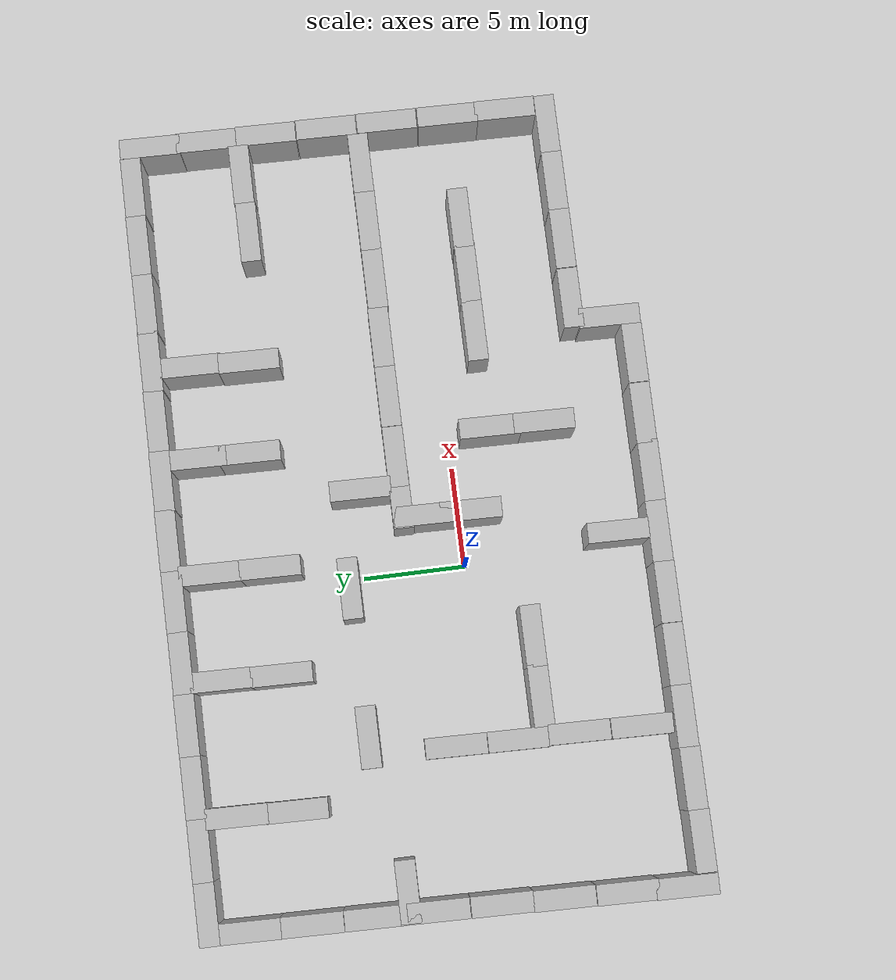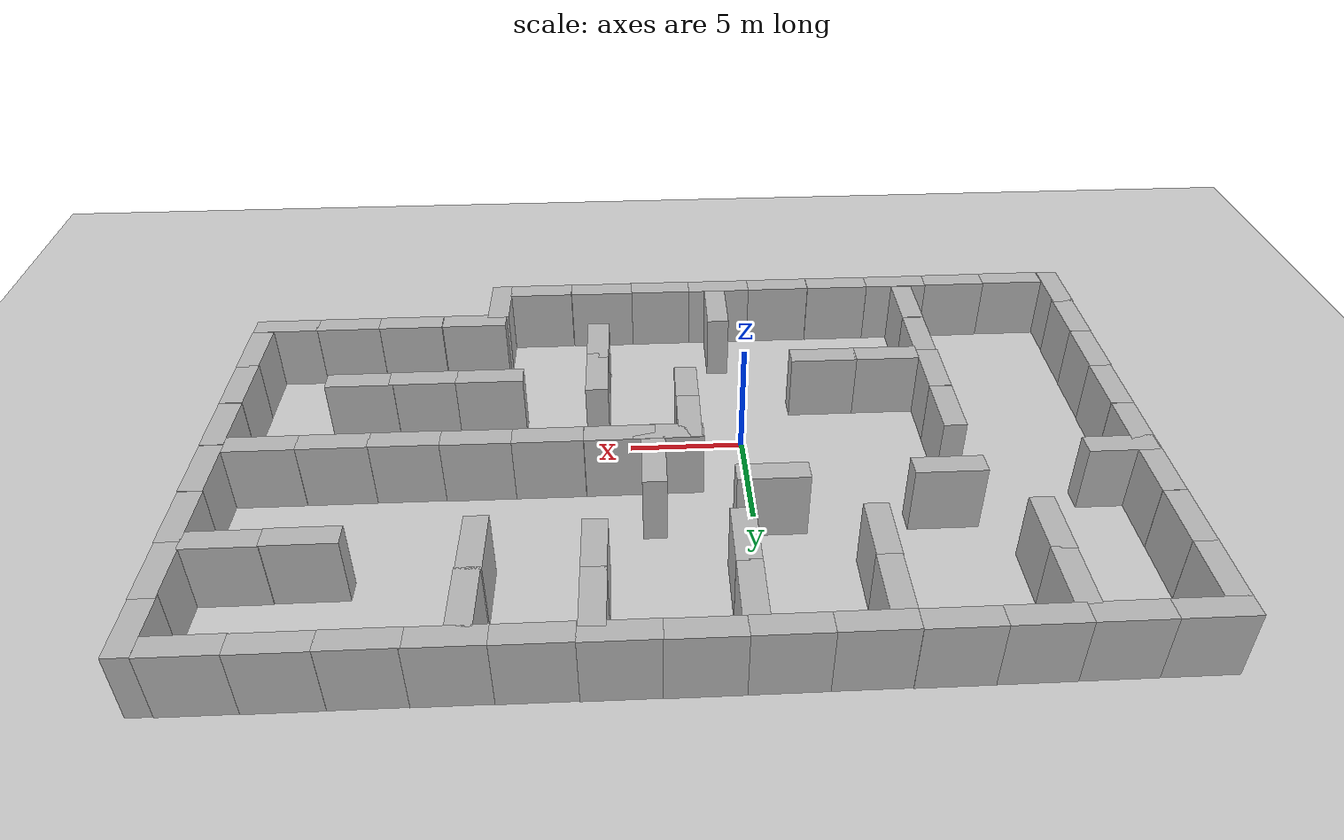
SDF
<sdf version="1.7">
 <world name="default">
  <light name="sun" type="directional">
   <pose>0 0 10 0 -0 0</pose>
   <diffuse>0.8 0.8 0.8 1</diffuse>
   <specular>0.2 0.2 0.2 1</specular>
   <attenuation>
    <range>1000</range>
    <constant>0.9</constant>
    <linear>0.01</linear>
    <quadratic>0.001</quadratic>
   </attenuation>
   <direction>-0.5 0.1 -0.9</direction>
   <spot><inner_angle>0</inner_angle><outer_angle>0</outer_angle><falloff>0</falloff></spot>
  </light>
  <model name="ground_plane">
   <static>1</static>
   <link name="link">
    <collision name="collision">
     <geometry><plane><normal>0 0 1</normal><size>100 100</size></plane></geometry>
     <surface>
      <contact><collide_bitmask>65535</collide_bitmask></contact>
      <friction><ode><mu>100</mu><mu2>50</mu2></ode></friction>
     </surface>
    </collision>
    <visual name="visual">
     <cast_shadows>0</cast_shadows>
     <geometry><plane><normal>0 0 1</normal><size>100 100</size></plane></geometry>
     <material>
      <script><uri>file://media/materials/scripts/gazebo.material</uri><name>Gazebo/Grey</name></script>
     </material>
    </visual>
   </link>
  </model>
  <gravity>0 0 -9.8</gravity>
  <magnetic_field>6e-06 2.3e-05 -4.2e-05</magnetic_field>
  <atmosphere type="adiabatic"/>
  <physics type="ode">
   <max_step_size>0.001</max_step_size>
   <real_time_factor>1</real_time_factor>
   <real_time_update_rate>1000</real_time_update_rate>
  </physics>
  <scene><ambient>0.4 0.4 0.4 1</ambient><background>0.7 0.7 0.7 1</background><shadows>1</shadows></scene>
  <spherical_coordinates>
   <surface_model>EARTH_WGS84</surface_model>
   <latitude_deg>0</latitude_deg>
   <longitude_deg>0</longitude_deg>
   <elevation>0</elevation>
   <heading_deg>0</heading_deg>
  </spherical_coordinates>
  <model name="brick_box_3x1x3">
   <static>1</static>
   <link name="chassis">
    <pose>0 0 1.5 0 -0 0</pose>
    <collision name="collision"><geometry><box><size>3 1 3</size></box></geometry></collision>
    <visual name="visual">
     <geometry><mesh><uri>model://brick_box_3x1x3/meshes/simple_box.dae</uri><scale>3 1 3</scale></mesh></geometry>
     <material>
      <script>
       <uri>model://brick_box_3x1x3/materials/scripts</uri>
       <uri>model://brick_box_3x1x3/materials/textures</uri>
       <name>BrickBox/Diffuse</name>
      </script>
     </material>
    </visual>
   </link>
   <pose>6.24661 -9.49277 0 0 -0 0</pose>
  </model>
  <model name="brick_box_3x1x3_0">
   <static>1</static>
   <link name="chassis">
    <pose>0 0 1.5 0 -0 0</pose>
    <collision name="collision"><geometry><box><size>3 1 3</size></box></geometry></collision>
    <visual name="visual">
     <geometry><mesh><uri>model://brick_box_3x1x3/meshes/simple_box.dae</uri><scale>3 1 3</scale></mesh></geometry>
     <material>
      <script>
       <uri>model://brick_box_3x1x3/materials/scripts</uri>
       <uri>model://brick_box_3x1x3/materials/textures</uri>
       <name>BrickBox/Diffuse</name>
      </script>
     </material>
    </visual>
   </link>
   <pose>9.26993 -9.50546 0 0 -0 0</pose>
  </model>
  <model name="brick_box_3x1x3_1">
   <static>1</static>
   <link name="chassis">
    <pose>0 0 1.5 0 -0 0</pose>
    <collision name="collision"><geometry><box><size>3 1 3</size></box></geometry></collision>
    <visual name="visual">
     <geometry><mesh><uri>model://brick_box_3x1x3/meshes/simple_box.dae</uri><scale>3 1 3</scale></mesh></geometry>
     <material>
      <script>
       <uri>model://brick_box_3x1x3/materials/scripts</uri>
       <uri>model://brick_box_3x1x3/materials/textures</uri>
       <name>BrickBox/Diffuse</name>
      </script>
     </material>
    </visual>
   </link>
   <pose>11.2396 -8.49514 0 0 0 -1.58618</pose>
  </model>
  <model name="brick_box_3x1x3_clone">
   <static>1</static>
   <link name="chassis">
    <pose>0 0 1.5 0 -0 0</pose>
    <collision name="collision"><geometry><box><size>3 1 3</size></box></geometry></collision>
    <visual name="visual">
     <geometry><mesh><uri>model://brick_box_3x1x3/meshes/simple_box.dae</uri><scale>3 1 3</scale></mesh></geometry>
     <material>
      <script>
       <uri>model://brick_box_3x1x3/materials/scripts</uri>
       <uri>model://brick_box_3x1x3/materials/textures</uri>
       <name>BrickBox/Diffuse</name>
      </script>
     </material>
    </visual>
   </link>
   <pose>3.37674 -9.50836 0 0 -0 0</pose>
  </model>
  <model name="brick_box_3x1x3_clone_0">
   <static>1</static>
   <link name="chassis">
    <pose>0 0 1.5 0 -0 0</pose>
    <collision name="collision"><geometry><box><size>3 1 3</size></box></geometry></collision>
    <visual name="visual">
     <geometry><mesh><uri>model://brick_box_3x1x3/meshes/simple_box.dae</uri><scale>3 1 3</scale></mesh></geometry>
     <material>
      <script>
       <uri>model://brick_box_3x1x3/materials/scripts</uri>
       <uri>model://brick_box_3x1x3/materials/textures</uri>
       <name>BrickBox/Diffuse</name>
      </script>
     </material>
    </visual>
   </link>
   <pose>0.376266 -9.49161 0 0 -0 0</pose>
  </model>
  <model name="brick_box_3x1x3_clone_1">
   <static>1</static>
   <link name="chassis">
    <pose>0 0 1.5 0 -0 0</pose>
    <collision name="collision"><geometry><box><size>3 1 3</size></box></geometry></collision>
    <visual name="visual">
     <geometry><mesh><uri>model://brick_box_3x1x3/meshes/simple_box.dae</uri><scale>3 1 3</scale></mesh></geometry>
     <material>
      <script>
       <uri>model://brick_box_3x1x3/materials/scripts</uri>
       <uri>model://brick_box_3x1x3/materials/textures</uri>
       <name>BrickBox/Diffuse</name>
      </script>
     </material>
    </visual>
   </link>
   <pose>-2.61675 -9.50637 0 0 -0 0</pose>
  </model>
  <model name="brick_box_3x1x3_clone_2">
   <static>1</static>
   <link name="chassis">
    <pose>0 0 1.5 0 -0 0</pose>
    <collision name="collision"><geometry><box><size>3 1 3</size></box></geometry></collision>
    <visual name="visual">
     <geometry><mesh><uri>model://brick_box_3x1x3/meshes/simple_box.dae</uri><scale>3 1 3</scale></mesh></geometry>
     <material>
      <script>
       <uri>model://brick_box_3x1x3/materials/scripts</uri>
       <uri>model://brick_box_3x1x3/materials/textures</uri>
       <name>BrickBox/Diffuse</name>
      </script>
     </material>
    </visual>
   </link>
   <pose>-5.63014 -9.50078 0 0 -0 0</pose>
  </model>
  <model name="brick_box_3x1x3_clone_3">
   <static>1</static>
   <link name="chassis">
    <pose>0 0 1.5 0 -0 0</pose>
    <collision name="collision"><geometry><box><size>3 1 3</size></box></geometry></collision>
    <visual name="visual">
     <geometry><mesh><uri>model://brick_box_3x1x3/meshes/simple_box.dae</uri><scale>3 1 3</scale></mesh></geometry>
     <material>
      <script>
       <uri>model://brick_box_3x1x3/materials/scripts</uri>
       <uri>model://brick_box_3x1x3/materials/textures</uri>
       <name>BrickBox/Diffuse</name>
      </script>
     </material>
    </visual>
   </link>
   <pose>-8.63084 -9.49857 0 0 -0 0</pose>
  </model>
  <model name="brick_box_3x1x3_clone_4">
   <static>1</static>
   <link name="chassis">
    <pose>0 0 1.5 0 -0 0</pose>
    <collision name="collision"><geometry><box><size>3 1 3</size></box></geometry></collision>
    <visual name="visual">
     <geometry><mesh><uri>model://brick_box_3x1x3/meshes/simple_box.dae</uri><scale>3 1 3</scale></mesh></geometry>
     <material>
      <script>
       <uri>model://brick_box_3x1x3/materials/scripts</uri>
       <uri>model://brick_box_3x1x3/materials/textures</uri>
       <name>BrickBox/Diffuse</name>
      </script>
     </material>
    </visual>
   </link>
   <pose>-11.6146 -9.52408 0 0 -0 0</pose>
  </model>
  <model name="brick_box_3x1x3_clone_5">
   <static>1</static>
   <link name="chassis">
    <pose>0 0 1.5 0 -0 0</pose>
    <collision name="collision"><geometry><box><size>3 1 3</size></box></geometry></collision>
    <visual name="visual">
     <geometry><mesh><uri>model://brick_box_3x1x3/meshes/simple_box.dae</uri><scale>3 1 3</scale></mesh></geometry>
     <material>
      <script>
       <uri>model://brick_box_3x1x3/materials/scripts</uri>
       <uri>model://brick_box_3x1x3/materials/textures</uri>
       <name>BrickBox/Diffuse</name>
      </script>
     </material>
    </visual>
   </link>
   <pose>-14.6063 -9.54962 0 0 -0 0</pose>
  </model>
  <model name="brick_box_3x1x3_1_clone">
   <static>1</static>
   <link name="chassis">
    <pose>0 0 1.5 0 -0 0</pose>
    <collision name="collision"><geometry><box><size>3 1 3</size></box></geometry></collision>
    <visual name="visual">
     <geometry><mesh><uri>model://brick_box_3x1x3/meshes/simple_box.dae</uri><scale>3 1 3</scale></mesh></geometry>
     <material>
      <script>
       <uri>model://brick_box_3x1x3/materials/scripts</uri>
       <uri>model://brick_box_3x1x3/materials/textures</uri>
       <name>BrickBox/Diffuse</name>
      </script>
     </material>
    </visual>
   </link>
   <pose>-16.6279 -8.53924 0 0 0 -1.58618</pose>
  </model>
  <model name="brick_box_3x1x3_1_clone_0">
   <static>1</static>
   <link name="chassis">
    <pose>0 0 1.5 0 -0 0</pose>
    <collision name="collision"><geometry><box><size>3 1 3</size></box></geometry></collision>
    <visual name="visual">
     <geometry><mesh><uri>model://brick_box_3x1x3/meshes/simple_box.dae</uri><scale>3 1 3</scale></mesh></geometry>
     <material>
      <script>
       <uri>model://brick_box_3x1x3/materials/scripts</uri>
       <uri>model://brick_box_3x1x3/materials/textures</uri>
       <name>BrickBox/Diffuse</name>
      </script>
     </material>
    </visual>
   </link>
   <pose>-16.558 -5.70853 0 0 0 -1.58618</pose>
  </model>
  <model name="brick_box_3x1x3_1_clone_1">
   <static>1</static>
   <link name="chassis">
    <pose>0 0 1.5 0 -0 0</pose>
    <collision name="collision"><geometry><box><size>3 1 3</size></box></geometry></collision>
    <visual name="visual">
     <geometry><mesh><uri>model://brick_box_3x1x3/meshes/simple_box.dae</uri><scale>3 1 3</scale></mesh></geometry>
     <material>
      <script>
       <uri>model://brick_box_3x1x3/materials/scripts</uri>
       <uri>model://brick_box_3x1x3/materials/textures</uri>
       <name>BrickBox/Diffuse</name>
      </script>
     </material>
    </visual>
   </link>
   <pose>-16.4879 -2.68912 0 0 0 -1.58618</pose>
  </model>
  <model name="brick_box_3x1x3_1_clone_2">
   <static>1</static>
   <link name="chassis">
    <pose>0 0 1.5 0 -0 0</pose>
    <collision name="collision"><geometry><box><size>3 1 3</size></box></geometry></collision>
    <visual name="visual">
     <geometry><mesh><uri>model://brick_box_3x1x3/meshes/simple_box.dae</uri><scale>3 1 3</scale></mesh></geometry>
     <material>
      <script>
       <uri>model://brick_box_3x1x3/materials/scripts</uri>
       <uri>model://brick_box_3x1x3/materials/textures</uri>
       <name>BrickBox/Diffuse</name>
      </script>
     </material>
    </visual>
   </link>
   <pose>-16.4112 0.286602 0 0 0 -1.58618</pose>
  </model>
  <model name="brick_box_3x1x3_1_clone_3">
   <static>1</static>
   <link name="chassis">
    <pose>0 0 1.5 0 -0 0</pose>
    <collision name="collision"><geometry><box><size>3 1 3</size></box></geometry></collision>
    <visual name="visual">
     <geometry><mesh><uri>model://brick_box_3x1x3/meshes/simple_box.dae</uri><scale>3 1 3</scale></mesh></geometry>
     <material>
      <script>
       <uri>model://brick_box_3x1x3/materials/scripts</uri>
       <uri>model://brick_box_3x1x3/materials/textures</uri>
       <name>BrickBox/Diffuse</name>
      </script>
     </material>
    </visual>
   </link>
   <pose>-16.3624 3.31324 0 0 0 -1.58618</pose>
  </model>
  <model name="brick_box_3x1x3_1_clone_4">
   <static>1</static>
   <link name="chassis">
    <pose>0 0 1.5 0 -0 0</pose>
    <collision name="collision"><geometry><box><size>3 1 3</size></box></geometry></collision>
    <visual name="visual">
     <geometry><mesh><uri>model://brick_box_3x1x3/meshes/simple_box.dae</uri><scale>3 1 3</scale></mesh></geometry>
     <material>
      <script>
       <uri>model://brick_box_3x1x3/materials/scripts</uri>
       <uri>model://brick_box_3x1x3/materials/textures</uri>
       <name>BrickBox/Diffuse</name>
      </script>
     </material>
    </visual>
   </link>
   <pose>-16.3253 6.32221 0 0 0 -1.58618</pose>
  </model>
  <model name="brick_box_3x1x3_1_clone_5">
   <static>1</static>
   <link name="chassis">
    <pose>0 0 1.5 0 -0 0</pose>
    <collision name="collision"><geometry><box><size>3 1 3</size></box></geometry></collision>
    <visual name="visual">
     <geometry><mesh><uri>model://brick_box_3x1x3/meshes/simple_box.dae</uri><scale>3 1 3</scale></mesh></geometry>
     <material>
      <script>
       <uri>model://brick_box_3x1x3/materials/scripts</uri>
       <uri>model://brick_box_3x1x3/materials/textures</uri>
       <name>BrickBox/Diffuse</name>
      </script>
     </material>
    </visual>
   </link>
   <pose>-16.2875 9.33152 0 0 0 -1.58618</pose>
  </model>
  <model name="brick_box_3x1x3_1_clone_6">
   <static>1</static>
   <link name="chassis">
    <pose>0 0 1.5 0 -0 0</pose>
    <collision name="collision"><geometry><box><size>3 1 3</size></box></geometry></collision>
    <visual name="visual">
     <geometry><mesh><uri>model://brick_box_3x1x3/meshes/simple_box.dae</uri><scale>3 1 3</scale></mesh></geometry>
     <material>
      <script>
       <uri>model://brick_box_3x1x3/materials/scripts</uri>
       <uri>model://brick_box_3x1x3/materials/textures</uri>
       <name>BrickBox/Diffuse</name>
      </script>
     </material>
    </visual>
   </link>
   <pose>-16.2509 12.2651 0 0 0 -1.58618</pose>
  </model>
  <model name="brick_box_3x1x3_0_clone">
   <static>1</static>
   <link name="chassis">
    <pose>0 0 1.5 0 -0 0</pose>
    <collision name="collision"><geometry><box><size>3 1 3</size></box></geometry></collision>
    <visual name="visual">
     <geometry><mesh><uri>model://brick_box_3x1x3/meshes/simple_box.dae</uri><scale>3 1 3</scale></mesh></geometry>
     <material>
      <script>
       <uri>model://brick_box_3x1x3/materials/scripts</uri>
       <uri>model://brick_box_3x1x3/materials/textures</uri>
       <name>BrickBox/Diffuse</name>
      </script>
     </material>
    </visual>
   </link>
   <pose>-15.233 14.2582 0 0 -0 0</pose>
  </model>
  <model name="brick_box_3x1x3_0_clone_0">
   <static>1</static>
   <link name="chassis">
    <pose>0 0 1.5 0 -0 0</pose>
    <collision name="collision"><geometry><box><size>3 1 3</size></box></geometry></collision>
    <visual name="visual">
     <geometry><mesh><uri>model://brick_box_3x1x3/meshes/simple_box.dae</uri><scale>3 1 3</scale></mesh></geometry>
     <material>
      <script>
       <uri>model://brick_box_3x1x3/materials/scripts</uri>
       <uri>model://brick_box_3x1x3/materials/textures</uri>
       <name>BrickBox/Diffuse</name>
      </script>
     </material>
    </visual>
   </link>
   <pose>-12.2407 14.2623 0 0 -0 0</pose>
  </model>
  <model name="brick_box_3x1x3_0_clone_1">
   <static>1</static>
   <link name="chassis">
    <pose>0 0 1.5 0 -0 0</pose>
    <collision name="collision"><geometry><box><size>3 1 3</size></box></geometry></collision>
    <visual name="visual">
     <geometry><mesh><uri>model://brick_box_3x1x3/meshes/simple_box.dae</uri><scale>3 1 3</scale></mesh></geometry>
     <material>
      <script>
       <uri>model://brick_box_3x1x3/materials/scripts</uri>
       <uri>model://brick_box_3x1x3/materials/textures</uri>
       <name>BrickBox/Diffuse</name>
      </script>
     </material>
    </visual>
   </link>
   <pose>-9.24612 14.2697 0 0 -0 0</pose>
  </model>
  <model name="brick_box_3x1x3_0_clone_2">
   <static>1</static>
   <link name="chassis">
    <pose>0 0 1.5 0 -0 0</pose>
    <collision name="collision"><geometry><box><size>3 1 3</size></box></geometry></collision>
    <visual name="visual">
     <geometry><mesh><uri>model://brick_box_3x1x3/meshes/simple_box.dae</uri><scale>3 1 3</scale></mesh></geometry>
     <material>
      <script>
       <uri>model://brick_box_3x1x3/materials/scripts</uri>
       <uri>model://brick_box_3x1x3/materials/textures</uri>
       <name>BrickBox/Diffuse</name>
      </script>
     </material>
    </visual>
   </link>
   <pose>-6.25408 14.2755 0 0 -0 0</pose>
  </model>
  <model name="brick_box_3x1x3_0_clone_3">
   <static>1</static>
   <link name="chassis">
    <pose>0 0 1.5 0 -0 0</pose>
    <collision name="collision"><geometry><box><size>3 1 3</size></box></geometry></collision>
    <visual name="visual">
     <geometry><mesh><uri>model://brick_box_3x1x3/meshes/simple_box.dae</uri><scale>3 1 3</scale></mesh></geometry>
     <material>
      <script>
       <uri>model://brick_box_3x1x3/materials/scripts</uri>
       <uri>model://brick_box_3x1x3/materials/textures</uri>
       <name>BrickBox/Diffuse</name>
      </script>
     </material>
    </visual>
   </link>
   <pose>-3.26532 14.2528 0 0 -0 0</pose>
  </model>
  <model name="brick_box_3x1x3_0_clone_4">
   <static>1</static>
   <link name="chassis">
    <pose>0 0 1.5 0 -0 0</pose>
    <collision name="collision"><geometry><box><size>3 1 3</size></box></geometry></collision>
    <visual name="visual">
     <geometry><mesh><uri>model://brick_box_3x1x3/meshes/simple_box.dae</uri><scale>3 1 3</scale></mesh></geometry>
     <material>
      <script>
       <uri>model://brick_box_3x1x3/materials/scripts</uri>
       <uri>model://brick_box_3x1x3/materials/textures</uri>
       <name>BrickBox/Diffuse</name>
      </script>
     </material>
    </visual>
   </link>
   <pose>-0.277923 14.2594 0 0 -0 0</pose>
  </model>
  <model name="brick_box_3x1x3_0_clone_5">
   <static>1</static>
   <link name="chassis">
    <pose>0 0 1.5 0 -0 0</pose>
    <collision name="collision"><geometry><box><size>3 1 3</size></box></geometry></collision>
    <visual name="visual">
     <geometry><mesh><uri>model://brick_box_3x1x3/meshes/simple_box.dae</uri><scale>3 1 3</scale></mesh></geometry>
     <material>
      <script>
       <uri>model://brick_box_3x1x3/materials/scripts</uri>
       <uri>model://brick_box_3x1x3/materials/textures</uri>
       <name>BrickBox/Diffuse</name>
      </script>
     </material>
    </visual>
   </link>
   <pose>2.70645 14.267 0 0 -0 0</pose>
  </model>
  <model name="brick_box_3x1x3_0_clone_6">
   <static>1</static>
   <link name="chassis">
    <pose>0 0 1.5 0 -0 0</pose>
    <collision name="collision"><geometry><box><size>3 1 3</size></box></geometry></collision>
    <visual name="visual">
     <geometry><mesh><uri>model://brick_box_3x1x3/meshes/simple_box.dae</uri><scale>3 1 3</scale></mesh></geometry>
     <material>
      <script>
       <uri>model://brick_box_3x1x3/materials/scripts</uri>
       <uri>model://brick_box_3x1x3/materials/textures</uri>
       <name>BrickBox/Diffuse</name>
      </script>
     </material>
    </visual>
   </link>
   <pose>5.65832 14.2434 0 0 -0 0</pose>
  </model>
  <model name="brick_box_3x1x3_0_clone_7">
   <static>1</static>
   <link name="chassis">
    <pose>0 0 1.5 0 -0 0</pose>
    <collision name="collision"><geometry><box><size>3 1 3</size></box></geometry></collision>
    <visual name="visual">
     <geometry><mesh><uri>model://brick_box_3x1x3/meshes/simple_box.dae</uri><scale>3 1 3</scale></mesh></geometry>
     <material>
      <script>
       <uri>model://brick_box_3x1x3/materials/scripts</uri>
       <uri>model://brick_box_3x1x3/materials/textures</uri>
       <name>BrickBox/Diffuse</name>
      </script>
     </material>
    </visual>
   </link>
   <pose>8.63917 14.2183 0 0 -0 0</pose>
  </model>
  <model name="brick_box_3x1x3_0_clone_8">
   <static>1</static>
   <link name="chassis">
    <pose>0 0 1.5 0 -0 0</pose>
    <collision name="collision"><geometry><box><size>3 1 3</size></box></geometry></collision>
    <visual name="visual">
     <geometry><mesh><uri>model://brick_box_3x1x3/meshes/simple_box.dae</uri><scale>3 1 3</scale></mesh></geometry>
     <material>
      <script>
       <uri>model://brick_box_3x1x3/materials/scripts</uri>
       <uri>model://brick_box_3x1x3/materials/textures</uri>
       <name>BrickBox/Diffuse</name>
      </script>
     </material>
    </visual>
   </link>
   <pose>11.6184 14.1949 0 0 -0 0</pose>
  </model>
  <model name="brick_box_3x1x3_0_clone_9">
   <static>1</static>
   <link name="chassis">
    <pose>0 0 1.5 0 -0 0</pose>
    <collision name="collision"><geometry><box><size>3 1 3</size></box></geometry></collision>
    <visual name="visual">
     <geometry><mesh><uri>model://brick_box_3x1x3/meshes/simple_box.dae</uri><scale>3 1 3</scale></mesh></geometry>
     <material>
      <script>
       <uri>model://brick_box_3x1x3/materials/scripts</uri>
       <uri>model://brick_box_3x1x3/materials/textures</uri>
       <name>BrickBox/Diffuse</name>
      </script>
     </material>
    </visual>
   </link>
   <pose>14.5423 14.1735 0 0 -0 0</pose>
  </model>
  <model name="brick_box_3x1x3_0_clone_10">
   <static>1</static>
   <link name="chassis">
    <pose>0 0 1.5 0 -0 0</pose>
    <collision name="collision"><geometry><box><size>3 1 3</size></box></geometry></collision>
    <visual name="visual">
     <geometry><mesh><uri>model://brick_box_3x1x3/meshes/simple_box.dae</uri><scale>3 1 3</scale></mesh></geometry>
     <material>
      <script>
       <uri>model://brick_box_3x1x3/materials/scripts</uri>
       <uri>model://brick_box_3x1x3/materials/textures</uri>
       <name>BrickBox/Diffuse</name>
      </script>
     </material>
    </visual>
   </link>
   <pose>17.5184 14.1811 0 0 -0 0</pose>
  </model>
  <model name="brick_box_3x1x3_0_clone_11">
   <static>1</static>
   <link name="chassis">
    <pose>0 0 1.5 0 -0 0</pose>
    <collision name="collision"><geometry><box><size>3 1 3</size></box></geometry></collision>
    <visual name="visual">
     <geometry><mesh><uri>model://brick_box_3x1x3/meshes/simple_box.dae</uri><scale>3 1 3</scale></mesh></geometry>
     <material>
      <script>
       <uri>model://brick_box_3x1x3/materials/scripts</uri>
       <uri>model://brick_box_3x1x3/materials/textures</uri>
       <name>BrickBox/Diffuse</name>
      </script>
     </material>
    </visual>
   </link>
   <pose>20.4869 14.1582 0 0 -0 0</pose>
  </model>
  <model name="brick_box_3x1x3_1_clone_7">
   <static>1</static>
   <link name="chassis">
    <pose>0 0 1.5 0 -0 0</pose>
    <collision name="collision"><geometry><box><size>3 1 3</size></box></geometry></collision>
    <visual name="visual">
     <geometry><mesh><uri>model://brick_box_3x1x3/meshes/simple_box.dae</uri><scale>3 1 3</scale></mesh></geometry>
     <material>
      <script>
       <uri>model://brick_box_3x1x3/materials/scripts</uri>
       <uri>model://brick_box_3x1x3/materials/textures</uri>
       <name>BrickBox/Diffuse</name>
      </script>
     </material>
    </visual>
   </link>
   <pose>22.4726 13.1236 0 0 0 -1.58618</pose>
  </model>
  <model name="brick_box_3x1x3_1_clone_8">
   <static>1</static>
   <link name="chassis">
    <pose>0 0 1.5 0 -0 0</pose>
    <collision name="collision"><geometry><box><size>3 1 3</size></box></geometry></collision>
    <visual name="visual">
     <geometry><mesh><uri>model://brick_box_3x1x3/meshes/simple_box.dae</uri><scale>3 1 3</scale></mesh></geometry>
     <material>
      <script>
       <uri>model://brick_box_3x1x3/materials/scripts</uri>
       <uri>model://brick_box_3x1x3/materials/textures</uri>
       <name>BrickBox/Diffuse</name>
      </script>
     </material>
    </visual>
   </link>
   <pose>22.4573 10.3096 0 0 0 -1.58618</pose>
  </model>
  <model name="brick_box_3x1x3_1_clone_9">
   <static>1</static>
   <link name="chassis">
    <pose>0 0 1.5 0 -0 0</pose>
    <collision name="collision"><geometry><box><size>3 1 3</size></box></geometry></collision>
    <visual name="visual">
     <geometry><mesh><uri>model://brick_box_3x1x3/meshes/simple_box.dae</uri><scale>3 1 3</scale></mesh></geometry>
     <material>
      <script>
       <uri>model://brick_box_3x1x3/materials/scripts</uri>
       <uri>model://brick_box_3x1x3/materials/textures</uri>
       <name>BrickBox/Diffuse</name>
      </script>
     </material>
    </visual>
   </link>
   <pose>22.4481 7.32316 0 0 0 -1.58618</pose>
  </model>
  <model name="brick_box_3x1x3_1_clone_10">
   <static>1</static>
   <link name="chassis">
    <pose>0 0 1.5 0 -0 0</pose>
    <collision name="collision"><geometry><box><size>3 1 3</size></box></geometry></collision>
    <visual name="visual">
     <geometry><mesh><uri>model://brick_box_3x1x3/meshes/simple_box.dae</uri><scale>3 1 3</scale></mesh></geometry>
     <material>
      <script>
       <uri>model://brick_box_3x1x3/materials/scripts</uri>
       <uri>model://brick_box_3x1x3/materials/textures</uri>
       <name>BrickBox/Diffuse</name>
      </script>
     </material>
    </visual>
   </link>
   <pose>22.4313 4.29102 0 0 0 -1.58618</pose>
  </model>
  <model name="brick_box_3x1x3_1_clone_11">
   <static>1</static>
   <link name="chassis">
    <pose>0 0 1.5 0 -0 0</pose>
    <collision name="collision"><geometry><box><size>3 1 3</size></box></geometry></collision>
    <visual name="visual">
     <geometry><mesh><uri>model://brick_box_3x1x3/meshes/simple_box.dae</uri><scale>3 1 3</scale></mesh></geometry>
     <material>
      <script>
       <uri>model://brick_box_3x1x3/materials/scripts</uri>
       <uri>model://brick_box_3x1x3/materials/textures</uri>
       <name>BrickBox/Diffuse</name>
      </script>
     </material>
    </visual>
   </link>
   <pose>22.4046 1.25072 0 0 0 -1.58618</pose>
  </model>
  <model name="brick_box_3x1x3_1_clone_12">
   <static>1</static>
   <link name="chassis">
    <pose>0 0 1.5 0 -0 0</pose>
    <collision name="collision"><geometry><box><size>3 1 3</size></box></geometry></collision>
    <visual name="visual">
     <geometry><mesh><uri>model://brick_box_3x1x3/meshes/simple_box.dae</uri><scale>3 1 3</scale></mesh></geometry>
     <material>
      <script>
       <uri>model://brick_box_3x1x3/materials/scripts</uri>
       <uri>model://brick_box_3x1x3/materials/textures</uri>
       <name>BrickBox/Diffuse</name>
      </script>
     </material>
    </visual>
   </link>
   <pose>22.368 -1.79572 0 0 0 -1.58618</pose>
  </model>
  <model name="brick_box_3x1x3_1_clone_13">
   <static>1</static>
   <link name="chassis">
    <pose>0 0 1.5 0 -0 0</pose>
    <collision name="collision"><geometry><box><size>3 1 3</size></box></geometry></collision>
    <visual name="visual">
     <geometry><mesh><uri>model://brick_box_3x1x3/meshes/simple_box.dae</uri><scale>3 1 3</scale></mesh></geometry>
     <material>
      <script>
       <uri>model://brick_box_3x1x3/materials/scripts</uri>
       <uri>model://brick_box_3x1x3/materials/textures</uri>
       <name>BrickBox/Diffuse</name>
      </script>
     </material>
    </visual>
   </link>
   <pose>22.3404 -4.68308 0 0 0 -1.58618</pose>
  </model>
  <model name="brick_box_3x1x3_0_clone_12">
   <static>1</static>
   <link name="chassis">
    <pose>0 0 1.5 0 -0 0</pose>
    <collision name="collision"><geometry><box><size>3 1 3</size></box></geometry></collision>
    <visual name="visual">
     <geometry><mesh><uri>model://brick_box_3x1x3/meshes/simple_box.dae</uri><scale>3 1 3</scale></mesh></geometry>
     <material>
      <script>
       <uri>model://brick_box_3x1x3/materials/scripts</uri>
       <uri>model://brick_box_3x1x3/materials/textures</uri>
       <name>BrickBox/Diffuse</name>
      </script>
     </material>
    </visual>
   </link>
   <pose>21.2878 -6.69388 0 0 -0 0</pose>
  </model>
  <model name="brick_box_3x1x3_0_clone_13">
   <static>1</static>
   <link name="chassis">
    <pose>0 0 1.5 0 -0 0</pose>
    <collision name="collision"><geometry><box><size>3 1 3</size></box></geometry></collision>
    <visual name="visual">
     <geometry><mesh><uri>model://brick_box_3x1x3/meshes/simple_box.dae</uri><scale>3 1 3</scale></mesh></geometry>
     <material>
      <script>
       <uri>model://brick_box_3x1x3/materials/scripts</uri>
       <uri>model://brick_box_3x1x3/materials/textures</uri>
       <name>BrickBox/Diffuse</name>
      </script>
     </material>
    </visual>
   </link>
   <pose>18.3578 -6.70605 0 0 -0 0</pose>
  </model>
  <model name="brick_box_3x1x3_0_clone_14">
   <static>1</static>
   <link name="chassis">
    <pose>0 0 1.5 0 -0 0</pose>
    <collision name="collision"><geometry><box><size>3 1 3</size></box></geometry></collision>
    <visual name="visual">
     <geometry><mesh><uri>model://brick_box_3x1x3/meshes/simple_box.dae</uri><scale>3 1 3</scale></mesh></geometry>
     <material>
      <script>
       <uri>model://brick_box_3x1x3/materials/scripts</uri>
       <uri>model://brick_box_3x1x3/materials/textures</uri>
       <name>BrickBox/Diffuse</name>
      </script>
     </material>
    </visual>
   </link>
   <pose>15.3956 -6.71422 0 0 -0 0</pose>
  </model>
  <model name="brick_box_3x1x3_0_clone_15">
   <static>1</static>
   <link name="chassis">
    <pose>0 0 1.5 0 -0 0</pose>
    <collision name="collision"><geometry><box><size>3 1 3</size></box></geometry></collision>
    <visual name="visual">
     <geometry><mesh><uri>model://brick_box_3x1x3/meshes/simple_box.dae</uri><scale>3 1 3</scale></mesh></geometry>
     <material>
      <script>
       <uri>model://brick_box_3x1x3/materials/scripts</uri>
       <uri>model://brick_box_3x1x3/materials/textures</uri>
       <name>BrickBox/Diffuse</name>
      </script>
     </material>
    </visual>
   </link>
   <pose>12.3678 -6.71439 0 0 -0 0</pose>
  </model>
  <model name="brick_box_3x1x3_0_clone_13_clone">
   <static>1</static>
   <link name="chassis">
    <pose>0 0 1.5 0 -0 0</pose>
    <collision name="collision"><geometry><box><size>3 1 3</size></box></geometry></collision>
    <visual name="visual">
     <geometry><mesh><uri>model://brick_box_3x1x3/meshes/simple_box.dae</uri><scale>3 1 3</scale></mesh></geometry>
     <material>
      <script>
       <uri>model://brick_box_3x1x3/materials/scripts</uri>
       <uri>model://brick_box_3x1x3/materials/textures</uri>
       <name>BrickBox/Diffuse</name>
      </script>
     </material>
    </visual>
   </link>
   <pose>20.4139 2.7789 0 0 -0 0</pose>
  </model>
  <model name="brick_box_3x1x3_0_clone_13_clone_0">
   <static>1</static>
   <link name="chassis">
    <pose>0 0 1.5 0 -0 0</pose>
    <collision name="collision"><geometry><box><size>3 1 3</size></box></geometry></collision>
    <visual name="visual">
     <geometry><mesh><uri>model://brick_box_3x1x3/meshes/simple_box.dae</uri><scale>3 1 3</scale></mesh></geometry>
     <material>
      <script>
       <uri>model://brick_box_3x1x3/materials/scripts</uri>
       <uri>model://brick_box_3x1x3/materials/textures</uri>
       <name>BrickBox/Diffuse</name>
      </script>
     </material>
    </visual>
   </link>
   <pose>17.438 2.7716 0 0 -0 0</pose>
  </model>
  <model name="brick_box_3x1x3_0_clone_13_clone_1">
   <static>1</static>
   <link name="chassis">
    <pose>0 0 1.5 0 -0 0</pose>
    <collision name="collision"><geometry><box><size>3 1 3</size></box></geometry></collision>
    <visual name="visual">
     <geometry><mesh><uri>model://brick_box_3x1x3/meshes/simple_box.dae</uri><scale>3 1 3</scale></mesh></geometry>
     <material>
      <script>
       <uri>model://brick_box_3x1x3/materials/scripts</uri>
       <uri>model://brick_box_3x1x3/materials/textures</uri>
       <name>BrickBox/Diffuse</name>
      </script>
     </material>
    </visual>
   </link>
   <pose>14.491 2.76728 0 0 -0 0</pose>
  </model>
  <model name="brick_box_3x1x3_0_clone_13_clone_2">
   <static>1</static>
   <link name="chassis">
    <pose>0 0 1.5 0 -0 0</pose>
    <collision name="collision"><geometry><box><size>3 1 3</size></box></geometry></collision>
    <visual name="visual">
     <geometry><mesh><uri>model://brick_box_3x1x3/meshes/simple_box.dae</uri><scale>3 1 3</scale></mesh></geometry>
     <material>
      <script>
       <uri>model://brick_box_3x1x3/materials/scripts</uri>
       <uri>model://brick_box_3x1x3/materials/textures</uri>
       <name>BrickBox/Diffuse</name>
      </script>
     </material>
    </visual>
   </link>
   <pose>11.5022 2.80166 0 0 -0 0</pose>
  </model>
  <model name="brick_box_3x1x3_0_clone_13_clone_3">
   <static>1</static>
   <link name="chassis">
    <pose>0 0 1.5 0 -0 0</pose>
    <collision name="collision"><geometry><box><size>3 1 3</size></box></geometry></collision>
    <visual name="visual">
     <geometry><mesh><uri>model://brick_box_3x1x3/meshes/simple_box.dae</uri><scale>3 1 3</scale></mesh></geometry>
     <material>
      <script>
       <uri>model://brick_box_3x1x3/materials/scripts</uri>
       <uri>model://brick_box_3x1x3/materials/textures</uri>
       <name>BrickBox/Diffuse</name>
      </script>
     </material>
    </visual>
   </link>
   <pose>8.52566 2.80451 0 0 -0 0</pose>
  </model>
  <model name="brick_box_3x1x3_0_clone_13_clone_4">
   <static>1</static>
   <link name="chassis">
    <pose>0 0 1.5 0 -0 0</pose>
    <collision name="collision"><geometry><box><size>3 1 3</size></box></geometry></collision>
    <visual name="visual">
     <geometry><mesh><uri>model://brick_box_3x1x3/meshes/simple_box.dae</uri><scale>3 1 3</scale></mesh></geometry>
     <material>
      <script>
       <uri>model://brick_box_3x1x3/materials/scripts</uri>
       <uri>model://brick_box_3x1x3/materials/textures</uri>
       <name>BrickBox/Diffuse</name>
      </script>
     </material>
    </visual>
   </link>
   <pose>5.51232 2.79764 0 0 -0 0</pose>
  </model>
  <model name="brick_box_3x1x3_0_clone_13_clone_5">
   <static>1</static>
   <link name="chassis">
    <pose>0 0 1.5 0 -0 0</pose>
    <collision name="collision"><geometry><box><size>3 1 3</size></box></geometry></collision>
    <visual name="visual">
     <geometry><mesh><uri>model://brick_box_3x1x3/meshes/simple_box.dae</uri><scale>3 1 3</scale></mesh></geometry>
     <material>
      <script>
       <uri>model://brick_box_3x1x3/materials/scripts</uri>
       <uri>model://brick_box_3x1x3/materials/textures</uri>
       <name>BrickBox/Diffuse</name>
      </script>
     </material>
    </visual>
   </link>
   <pose>3.46711 2.78556 0 0 -0 0</pose>
  </model>
  <model name="brick_box_3x1x3_1_clone_16">
   <static>1</static>
   <link name="chassis">
    <pose>0 0 1.5 0 -0 0</pose>
    <collision name="collision"><geometry><box><size>3 1 3</size></box></geometry></collision>
    <visual name="visual">
     <geometry><mesh><uri>model://brick_box_3x1x3/meshes/simple_box.dae</uri><scale>3 1 3</scale></mesh></geometry>
     <material>
      <script>
       <uri>model://brick_box_3x1x3/materials/scripts</uri>
       <uri>model://brick_box_3x1x3/materials/textures</uri>
       <name>BrickBox/Diffuse</name>
      </script>
     </material>
    </visual>
   </link>
   <pose>0.620295 -7.52358 0 0 0 -1.58618</pose>
  </model>
  <model name="brick_box_3x1x3_1_clone_16_clone">
   <static>1</static>
   <link name="chassis">
    <pose>0 0 1.5 0 -0 0</pose>
    <collision name="collision"><geometry><box><size>3 1 3</size></box></geometry></collision>
    <visual name="visual">
     <geometry><mesh><uri>model://brick_box_3x1x3/meshes/simple_box.dae</uri><scale>3 1 3</scale></mesh></geometry>
     <material>
      <script>
       <uri>model://brick_box_3x1x3/materials/scripts</uri>
       <uri>model://brick_box_3x1x3/materials/textures</uri>
       <name>BrickBox/Diffuse</name>
      </script>
     </material>
    </visual>
   </link>
   <pose>11.1797 12.2817 0 0 0 -1.58618</pose>
  </model>
  <model name="brick_box_3x1x3_1_clone_16_clone_0">
   <static>1</static>
   <link name="chassis">
    <pose>0 0 1.5 0 -0 0</pose>
    <collision name="collision"><geometry><box><size>3 1 3</size></box></geometry></collision>
    <visual name="visual">
     <geometry><mesh><uri>model://brick_box_3x1x3/meshes/simple_box.dae</uri><scale>3 1 3</scale></mesh></geometry>
     <material>
      <script>
       <uri>model://brick_box_3x1x3/materials/scripts</uri>
       <uri>model://brick_box_3x1x3/materials/textures</uri>
       <name>BrickBox/Diffuse</name>
      </script>
     </material>
    </visual>
   </link>
   <pose>4.13245 4.6949 0 0 0 -1.58618</pose>
  </model>
  <model name="brick_box_3x1x3_1_clone_16_clone_1">
   <static>1</static>
   <link name="chassis">
    <pose>0 0 1.5 0 -0 0</pose>
    <collision name="collision"><geometry><box><size>3 1 3</size></box></geometry></collision>
    <visual name="visual">
     <geometry><mesh><uri>model://brick_box_3x1x3/meshes/simple_box.dae</uri><scale>3 1 3</scale></mesh></geometry>
     <material>
      <script>
       <uri>model://brick_box_3x1x3/materials/scripts</uri>
       <uri>model://brick_box_3x1x3/materials/textures</uri>
       <name>BrickBox/Diffuse</name>
      </script>
     </material>
    </visual>
   </link>
   <pose>-4.29832 12.4006 0 0 0 -1.58618</pose>
  </model>
  <model name="brick_box_3x1x3_1_clone_16_clone_2">
   <static>1</static>
   <link name="chassis">
    <pose>0 0 1.5 0 -0 0</pose>
    <collision name="collision"><geometry><box><size>3 1 3</size></box></geometry></collision>
    <visual name="visual">
     <geometry><mesh><uri>model://brick_box_3x1x3/meshes/simple_box.dae</uri><scale>3 1 3</scale></mesh></geometry>
     <material>
      <script>
       <uri>model://brick_box_3x1x3/materials/scripts</uri>
       <uri>model://brick_box_3x1x3/materials/textures</uri>
       <name>BrickBox/Diffuse</name>
      </script>
     </material>
    </visual>
   </link>
   <pose>-4.36322 9.48334 0 0 0 -1.58618</pose>
  </model>
  <model name="brick_box_3x1x3_1_clone_16_clone_3">
   <static>1</static>
   <link name="chassis">
    <pose>0 0 1.5 0 -0 0</pose>
    <collision name="collision"><geometry><box><size>3 1 3</size></box></geometry></collision>
    <visual name="visual">
     <geometry><mesh><uri>model://brick_box_3x1x3/meshes/simple_box.dae</uri><scale>3 1 3</scale></mesh></geometry>
     <material>
      <script>
       <uri>model://brick_box_3x1x3/materials/scripts</uri>
       <uri>model://brick_box_3x1x3/materials/textures</uri>
       <name>BrickBox/Diffuse</name>
      </script>
     </material>
    </visual>
   </link>
   <pose>-8.84664 -7.4236 0 0 0 -1.58618</pose>
  </model>
  <model name="brick_box_3x1x3_1_clone_16_clone_4">
   <static>1</static>
   <link name="chassis">
    <pose>0 0 1.5 0 -0 0</pose>
    <collision name="collision"><geometry><box><size>3 1 3</size></box></geometry></collision>
    <visual name="visual">
     <geometry><mesh><uri>model://brick_box_3x1x3/meshes/simple_box.dae</uri><scale>3 1 3</scale></mesh></geometry>
     <material>
      <script>
       <uri>model://brick_box_3x1x3/materials/scripts</uri>
       <uri>model://brick_box_3x1x3/materials/textures</uri>
       <name>BrickBox/Diffuse</name>
      </script>
     </material>
    </visual>
   </link>
   <pose>-8.79619 -4.3989 0 0 0 -1.58618</pose>
  </model>
  <model name="brick_box_3x1x3_1_clone_16_clone_5">
   <static>1</static>
   <link name="chassis">
    <pose>0 0 1.5 0 -0 0</pose>
    <collision name="collision"><geometry><box><size>3 1 3</size></box></geometry></collision>
    <visual name="visual">
     <geometry><mesh><uri>model://brick_box_3x1x3/meshes/simple_box.dae</uri><scale>3 1 3</scale></mesh></geometry>
     <material>
      <script>
       <uri>model://brick_box_3x1x3/materials/scripts</uri>
       <uri>model://brick_box_3x1x3/materials/textures</uri>
       <name>BrickBox/Diffuse</name>
      </script>
     </material>
    </visual>
   </link>
   <pose>-8.80661 -1.46803 0 0 0 -1.58618</pose>
  </model>
  <model name="brick_box_3x1x3_1_clone_16_clone_6">
   <static>1</static>
   <link name="chassis">
    <pose>0 0 1.5 0 -0 0</pose>
    <collision name="collision"><geometry><box><size>3 1 3</size></box></geometry></collision>
    <visual name="visual">
     <geometry><mesh><uri>model://brick_box_3x1x3/meshes/simple_box.dae</uri><scale>3 1 3</scale></mesh></geometry>
     <material>
      <script>
       <uri>model://brick_box_3x1x3/materials/scripts</uri>
       <uri>model://brick_box_3x1x3/materials/textures</uri>
       <name>BrickBox/Diffuse</name>
      </script>
     </material>
    </visual>
   </link>
   <pose>-8.75967 1.54596 0 0 0 -1.58618</pose>
  </model>
  <model name="brick_box_3x1x3_clone_1_clone">
   <static>1</static>
   <link name="chassis">
    <pose>0 0 1.5 0 -0 0</pose>
    <collision name="collision"><geometry><box><size>3 1 3</size></box></geometry></collision>
    <visual name="visual">
     <geometry><mesh><uri>model://brick_box_3x1x3/meshes/simple_box.dae</uri><scale>3 1 3</scale></mesh></geometry>
     <material>
      <script>
       <uri>model://brick_box_3x1x3/materials/scripts</uri>
       <uri>model://brick_box_3x1x3/materials/textures</uri>
       <name>BrickBox/Diffuse</name>
      </script>
     </material>
    </visual>
   </link>
   <pose>-15.299 4.66313 0 0 -0 0</pose>
  </model>
  <model name="brick_box_3x1x3_clone_1_clone_0">
   <static>1</static>
   <link name="chassis">
    <pose>0 0 1.5 0 -0 0</pose>
    <collision name="collision"><geometry><box><size>3 1 3</size></box></geometry></collision>
    <visual name="visual">
     <geometry><mesh><uri>model://brick_box_3x1x3/meshes/simple_box.dae</uri><scale>3 1 3</scale></mesh></geometry>
     <material>
      <script>
       <uri>model://brick_box_3x1x3/materials/scripts</uri>
       <uri>model://brick_box_3x1x3/materials/textures</uri>
       <name>BrickBox/Diffuse</name>
      </script>
     </material>
    </visual>
   </link>
   <pose>14.2366 -1.83126 0 0 -0 0</pose>
  </model>
  <model name="brick_box_3x1x3_1_clone_16_clone_7">
   <static>1</static>
   <link name="chassis">
    <pose>0 0 1.5 0 -0 0</pose>
    <collision name="collision"><geometry><box><size>3 1 3</size></box></geometry></collision>
    <visual name="visual">
     <geometry><mesh><uri>model://brick_box_3x1x3/meshes/simple_box.dae</uri><scale>3 1 3</scale></mesh></geometry>
     <material>
      <script>
       <uri>model://brick_box_3x1x3/materials/scripts</uri>
       <uri>model://brick_box_3x1x3/materials/textures</uri>
       <name>BrickBox/Diffuse</name>
      </script>
     </material>
    </visual>
   </link>
   <pose>6.45542 -1.95951 0 0 0 -1.58618</pose>
  </model>
  <model name="brick_box_3x1x3_1_clone_16_clone_clone">
   <static>1</static>
   <link name="chassis">
    <pose>0 0 1.5 0 -0 0</pose>
    <collision name="collision"><geometry><box><size>3 1 3</size></box></geometry></collision>
    <visual name="visual">
     <geometry><mesh><uri>model://brick_box_3x1x3/meshes/simple_box.dae</uri><scale>3 1 3</scale></mesh></geometry>
     <material>
      <script>
       <uri>model://brick_box_3x1x3/materials/scripts</uri>
       <uri>model://brick_box_3x1x3/materials/textures</uri>
       <name>BrickBox/Diffuse</name>
      </script>
     </material>
    </visual>
   </link>
   <pose>11.0927 9.40136 0 0 0 -1.58618</pose>
  </model>
  <model name="brick_box_3x1x3_1_clone_16_clone_clone_0">
   <static>1</static>
   <link name="chassis">
    <pose>0 0 1.5 0 -0 0</pose>
    <collision name="collision"><geometry><box><size>3 1 3</size></box></geometry></collision>
    <visual name="visual">
     <geometry><mesh><uri>model://brick_box_3x1x3/meshes/simple_box.dae</uri><scale>3 1 3</scale></mesh></geometry>
     <material>
      <script>
       <uri>model://brick_box_3x1x3/materials/scripts</uri>
       <uri>model://brick_box_3x1x3/materials/textures</uri>
       <name>BrickBox/Diffuse</name>
      </script>
     </material>
    </visual>
   </link>
   <pose>0.878773 12.4144 0 0 0 -1.58618</pose>
  </model>
  <model name="brick_box_3x1x3_1_clone_16_clone_clone_1">
   <static>1</static>
   <link name="chassis">
    <pose>0 0 1.5 0 -0 0</pose>
    <collision name="collision"><geometry><box><size>3 1 3</size></box></geometry></collision>
    <visual name="visual">
     <geometry><mesh><uri>model://brick_box_3x1x3/meshes/simple_box.dae</uri><scale>3 1 3</scale></mesh></geometry>
     <material>
      <script>
       <uri>model://brick_box_3x1x3/materials/scripts</uri>
       <uri>model://brick_box_3x1x3/materials/textures</uri>
       <name>BrickBox/Diffuse</name>
      </script>
     </material>
    </visual>
   </link>
   <pose>0.837943 9.47564 0 0 0 -1.58618</pose>
  </model>
  <model name="brick_box_3x1x3_1_clone_16_clone_clone_2">
   <static>1</static>
   <link name="chassis">
    <pose>0 0 1.5 0 -0 0</pose>
    <collision name="collision"><geometry><box><size>3 1 3</size></box></geometry></collision>
    <visual name="visual">
     <geometry><mesh><uri>model://brick_box_3x1x3/meshes/simple_box.dae</uri><scale>3 1 3</scale></mesh></geometry>
     <material>
      <script>
       <uri>model://brick_box_3x1x3/materials/scripts</uri>
       <uri>model://brick_box_3x1x3/materials/textures</uri>
       <name>BrickBox/Diffuse</name>
      </script>
     </material>
    </visual>
   </link>
   <pose>-10.8333 12.3521 0 0 0 -1.58618</pose>
  </model>
  <model name="brick_box_3x1x3_1_clone_16_clone_clone_3">
   <static>1</static>
   <link name="chassis">
    <pose>0 0 1.5 0 -0 0</pose>
    <collision name="collision"><geometry><box><size>3 1 3</size></box></geometry></collision>
    <visual name="visual">
     <geometry><mesh><uri>model://brick_box_3x1x3/meshes/simple_box.dae</uri><scale>3 1 3</scale></mesh></geometry>
     <material>
      <script>
       <uri>model://brick_box_3x1x3/materials/scripts</uri>
       <uri>model://brick_box_3x1x3/materials/textures</uri>
       <name>BrickBox/Diffuse</name>
      </script>
     </material>
    </visual>
   </link>
   <pose>-10.8932 9.45787 0 0 0 -1.58618</pose>
  </model>
  <model name="brick_box_3x1x3_1_clone_16_clone_clone_4">
   <static>1</static>
   <link name="chassis">
    <pose>0 0 1.5 0 -0 0</pose>
    <collision name="collision"><geometry><box><size>3 1 3</size></box></geometry></collision>
    <visual name="visual">
     <geometry><mesh><uri>model://brick_box_3x1x3/meshes/simple_box.dae</uri><scale>3 1 3</scale></mesh></geometry>
     <material>
      <script>
       <uri>model://brick_box_3x1x3/materials/scripts</uri>
       <uri>model://brick_box_3x1x3/materials/textures</uri>
       <name>BrickBox/Diffuse</name>
      </script>
     </material>
    </visual>
   </link>
   <pose>6.41994 -4.62922 0 0 0 -1.58618</pose>
  </model>
  <model name="brick_box_3x1x3_clone_1_clone_0_clone">
   <static>1</static>
   <link name="chassis">
    <pose>0 0 1.5 0 -0 0</pose>
    <collision name="collision"><geometry><box><size>3 1 3</size></box></geometry></collision>
    <visual name="visual">
     <geometry><mesh><uri>model://brick_box_3x1x3/meshes/simple_box.dae</uri><scale>3 1 3</scale></mesh></geometry>
     <material>
      <script>
       <uri>model://brick_box_3x1x3/materials/scripts</uri>
       <uri>model://brick_box_3x1x3/materials/textures</uri>
       <name>BrickBox/Diffuse</name>
      </script>
     </material>
    </visual>
   </link>
   <pose>11.285 -1.82965 0 0 -0 0</pose>
  </model>
  <model name="brick_box_3x1x3_clone_1_clone_0_clone_0">
   <static>1</static>
   <link name="chassis">
    <pose>0 0 1.5 0 -0 0</pose>
    <collision name="collision"><geometry><box><size>3 1 3</size></box></geometry></collision>
    <visual name="visual">
     <geometry><mesh><uri>model://brick_box_3x1x3/meshes/simple_box.dae</uri><scale>3 1 3</scale></mesh></geometry>
     <material>
      <script>
       <uri>model://brick_box_3x1x3/materials/scripts</uri>
       <uri>model://brick_box_3x1x3/materials/textures</uri>
       <name>BrickBox/Diffuse</name>
      </script>
     </material>
    </visual>
   </link>
   <pose>17.0443 -1.80809 0 0 -0 0</pose>
  </model>
  <model name="brick_box_3x1x3_clone_1_clone_0_clone_1">
   <static>1</static>
   <link name="chassis">
    <pose>0 0 1.5 0 -0 0</pose>
    <collision name="collision"><geometry><box><size>3 1 3</size></box></geometry></collision>
    <visual name="visual">
     <geometry><mesh><uri>model://brick_box_3x1x3/meshes/simple_box.dae</uri><scale>3 1 3</scale></mesh></geometry>
     <material>
      <script>
       <uri>model://brick_box_3x1x3/materials/scripts</uri>
       <uri>model://brick_box_3x1x3/materials/textures</uri>
       <name>BrickBox/Diffuse</name>
      </script>
     </material>
    </visual>
   </link>
   <pose>-6.84689 -2.78016 0 0 -0 0</pose>
  </model>
  <model name="brick_box_3x1x3_clone_1_clone_0_clone_2">
   <static>1</static>
   <link name="chassis">
    <pose>0 0 1.5 0 -0 0</pose>
    <collision name="collision"><geometry><box><size>3 1 3</size></box></geometry></collision>
    <visual name="visual">
     <geometry><mesh><uri>model://brick_box_3x1x3/meshes/simple_box.dae</uri><scale>3 1 3</scale></mesh></geometry>
     <material>
      <script>
       <uri>model://brick_box_3x1x3/materials/scripts</uri>
       <uri>model://brick_box_3x1x3/materials/textures</uri>
       <name>BrickBox/Diffuse</name>
      </script>
     </material>
    </visual>
   </link>
   <pose>-3.95072 -2.7787 0 0 -0 0</pose>
  </model>
  <model name="brick_box_3x1x3_clone_1_clone_0_clone_3">
   <static>1</static>
   <link name="chassis">
    <pose>0 0 1.5 0 -0 0</pose>
    <collision name="collision"><geometry><box><size>3 1 3</size></box></geometry></collision>
    <visual name="visual">
     <geometry><mesh><uri>model://brick_box_3x1x3/meshes/simple_box.dae</uri><scale>3 1 3</scale></mesh></geometry>
     <material>
      <script>
       <uri>model://brick_box_3x1x3/materials/scripts</uri>
       <uri>model://brick_box_3x1x3/materials/textures</uri>
       <name>BrickBox/Diffuse</name>
      </script>
     </material>
    </visual>
   </link>
   <pose>-7.84154 5.68373 0 0 -0 0</pose>
  </model>
  <model name="brick_box_3x1x3_clone_1_clone_0_clone_4">
   <static>1</static>
   <link name="chassis">
    <pose>0 0 1.5 0 -0 0</pose>
    <collision name="collision"><geometry><box><size>3 1 3</size></box></geometry></collision>
    <visual name="visual">
     <geometry><mesh><uri>model://brick_box_3x1x3/meshes/simple_box.dae</uri><scale>3 1 3</scale></mesh></geometry>
     <material>
      <script>
       <uri>model://brick_box_3x1x3/materials/scripts</uri>
       <uri>model://brick_box_3x1x3/materials/textures</uri>
       <name>BrickBox/Diffuse</name>
      </script>
     </material>
    </visual>
   </link>
   <pose>-0.631829 5.73728 0 0 -0 0</pose>
  </model>
  <model name="brick_box_3x1x3_clone_1_clone_0_clone_5">
   <static>1</static>
   <link name="chassis">
    <pose>0 0 1.5 0 -0 0</pose>
    <collision name="collision"><geometry><box><size>3 1 3</size></box></geometry></collision>
    <visual name="visual">
     <geometry><mesh><uri>model://brick_box_3x1x3/meshes/simple_box.dae</uri><scale>3 1 3</scale></mesh></geometry>
     <material>
      <script>
       <uri>model://brick_box_3x1x3/materials/scripts</uri>
       <uri>model://brick_box_3x1x3/materials/textures</uri>
       <name>BrickBox/Diffuse</name>
      </script>
     </material>
    </visual>
   </link>
   <pose>20.5156 8.74734 0 0 -0 0</pose>
  </model>
  <model name="brick_box_3x1x3_clone_1_clone_0_clone_6">
   <static>1</static>
   <link name="chassis">
    <pose>0 0 1.5 0 -0 0</pose>
    <collision name="collision"><geometry><box><size>3 1 3</size></box></geometry></collision>
    <visual name="visual">
     <geometry><mesh><uri>model://brick_box_3x1x3/meshes/simple_box.dae</uri><scale>3 1 3</scale></mesh></geometry>
     <material>
      <script>
       <uri>model://brick_box_3x1x3/materials/scripts</uri>
       <uri>model://brick_box_3x1x3/materials/textures</uri>
       <name>BrickBox/Diffuse</name>
      </script>
     </material>
    </visual>
   </link>
   <pose>17.5603 8.71346 0 0 -0 0</pose>
  </model>
  <model name="brick_box_3x1x3_1_clone_16_clone_clone_clone">
   <static>1</static>
   <link name="chassis">
    <pose>0 0 1.5 0 -0 0</pose>
    <collision name="collision"><geometry><box><size>3 1 3</size></box></geometry></collision>
    <visual name="visual">
     <geometry><mesh><uri>model://brick_box_3x1x3/meshes/simple_box.dae</uri><scale>3 1 3</scale></mesh></geometry>
     <material>
      <script>
       <uri>model://brick_box_3x1x3/materials/scripts</uri>
       <uri>model://brick_box_3x1x3/materials/textures</uri>
       <name>BrickBox/Diffuse</name>
      </script>
     </material>
    </visual>
   </link>
   <pose>6.58425 12.4957 0 0 0 -1.58618</pose>
  </model>
  <model name="brick_box_3x1x3_1_clone_16_clone_clone_clone_0">
   <static>1</static>
   <link name="chassis">
    <pose>0 0 1.5 0 -0 0</pose>
    <collision name="collision"><geometry><box><size>3 1 3</size></box></geometry></collision>
    <visual name="visual">
     <geometry><mesh><uri>model://brick_box_3x1x3/meshes/simple_box.dae</uri><scale>3 1 3</scale></mesh></geometry>
     <material>
      <script>
       <uri>model://brick_box_3x1x3/materials/scripts</uri>
       <uri>model://brick_box_3x1x3/materials/textures</uri>
       <name>BrickBox/Diffuse</name>
      </script>
     </material>
    </visual>
   </link>
   <pose>6.54317 9.83489 0 0 0 -1.58618</pose>
  </model>
  <model name="brick_box_3x1x3_1_clone_16_clone_0_clone">
   <static>1</static>
   <link name="chassis">
    <pose>0 0 1.5 0 -0 0</pose>
    <collision name="collision"><geometry><box><size>3 1 3</size></box></geometry></collision>
    <visual name="visual">
     <geometry><mesh><uri>model://brick_box_3x1x3/meshes/simple_box.dae</uri><scale>3 1 3</scale></mesh></geometry>
     <material>
      <script>
       <uri>model://brick_box_3x1x3/materials/scripts</uri>
       <uri>model://brick_box_3x1x3/materials/textures</uri>
       <name>BrickBox/Diffuse</name>
      </script>
     </material>
    </visual>
   </link>
   <pose>2.51606 1.73145 0 0 0 -1.58618</pose>
  </model>
  <model name="brick_box_3x1x3_1_clone_16_clone_0_clone_0">
   <static>1</static>
   <link name="chassis">
    <pose>0 0 1.5 0 -0 0</pose>
    <collision name="collision"><geometry><box><size>3 1 3</size></box></geometry></collision>
    <visual name="visual">
     <geometry><mesh><uri>model://brick_box_3x1x3/meshes/simple_box.dae</uri><scale>3 1 3</scale></mesh></geometry>
     <material>
      <script>
       <uri>model://brick_box_3x1x3/materials/scripts</uri>
       <uri>model://brick_box_3x1x3/materials/textures</uri>
       <name>BrickBox/Diffuse</name>
      </script>
     </material>
    </visual>
   </link>
   <pose>2.49106 -0.551376 0 0 0 -1.58618</pose>
  </model>
 </world>
</sdf>
